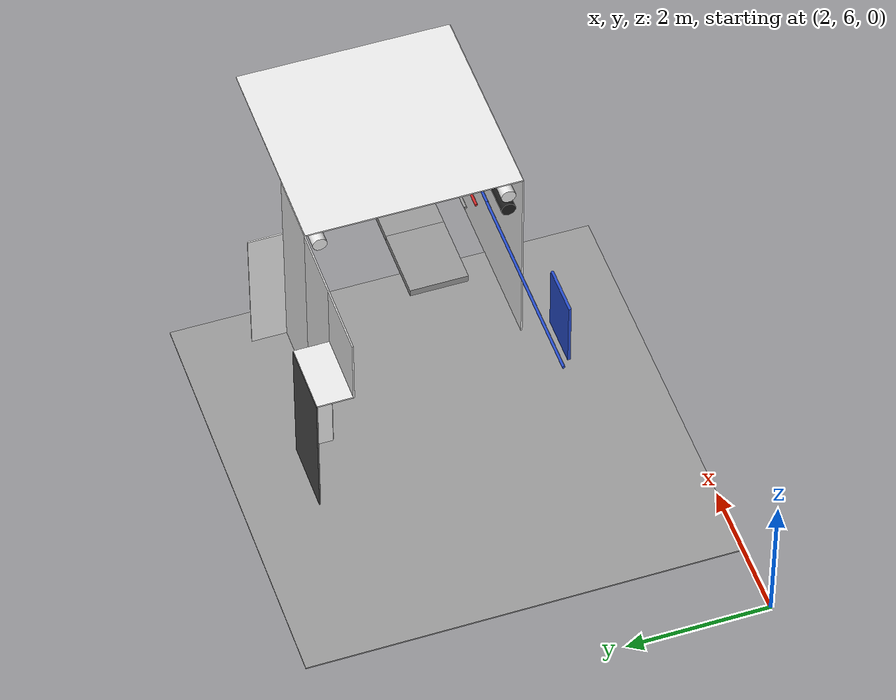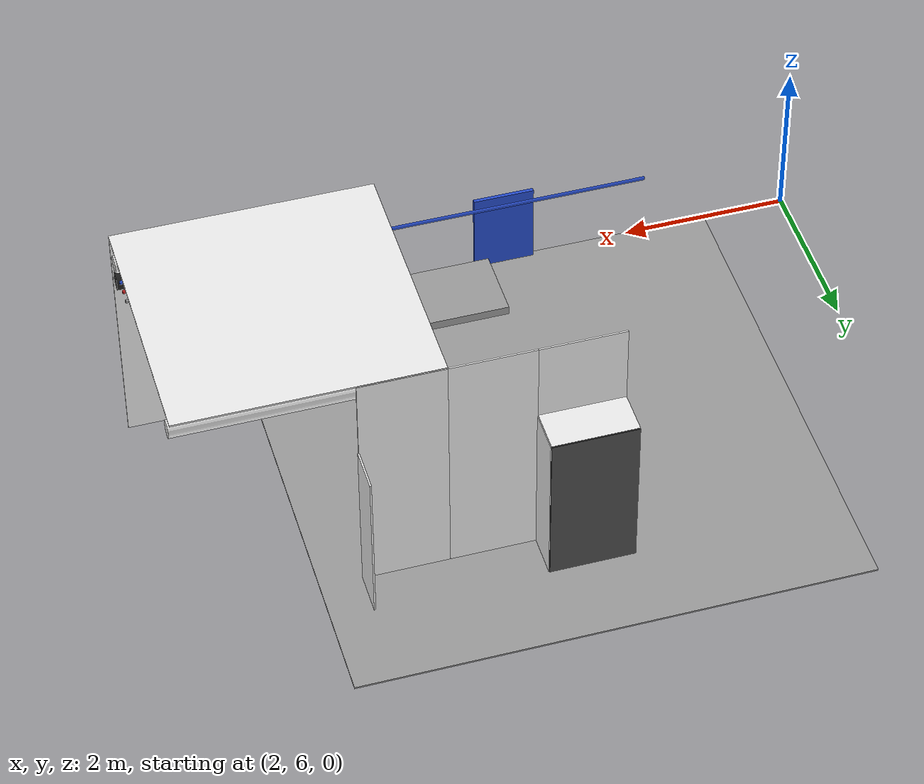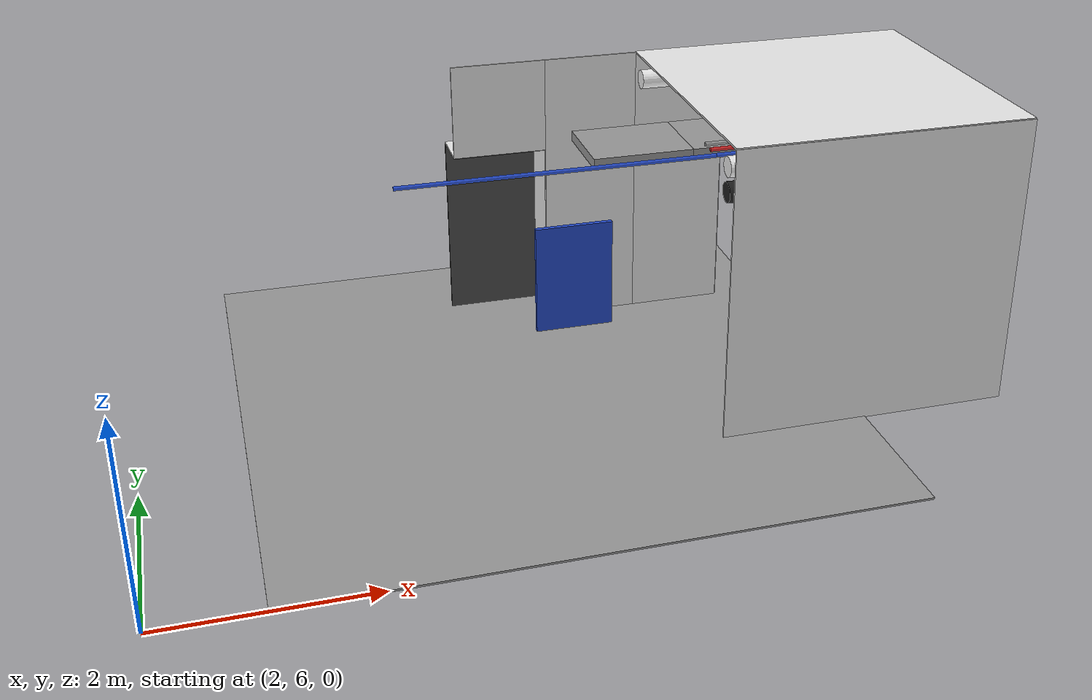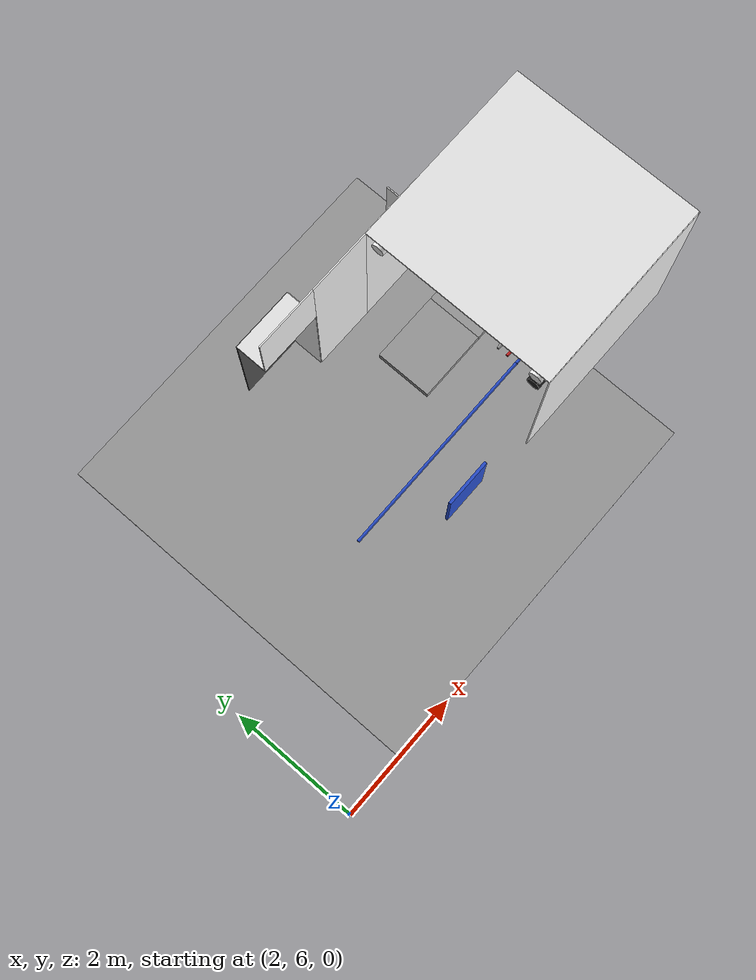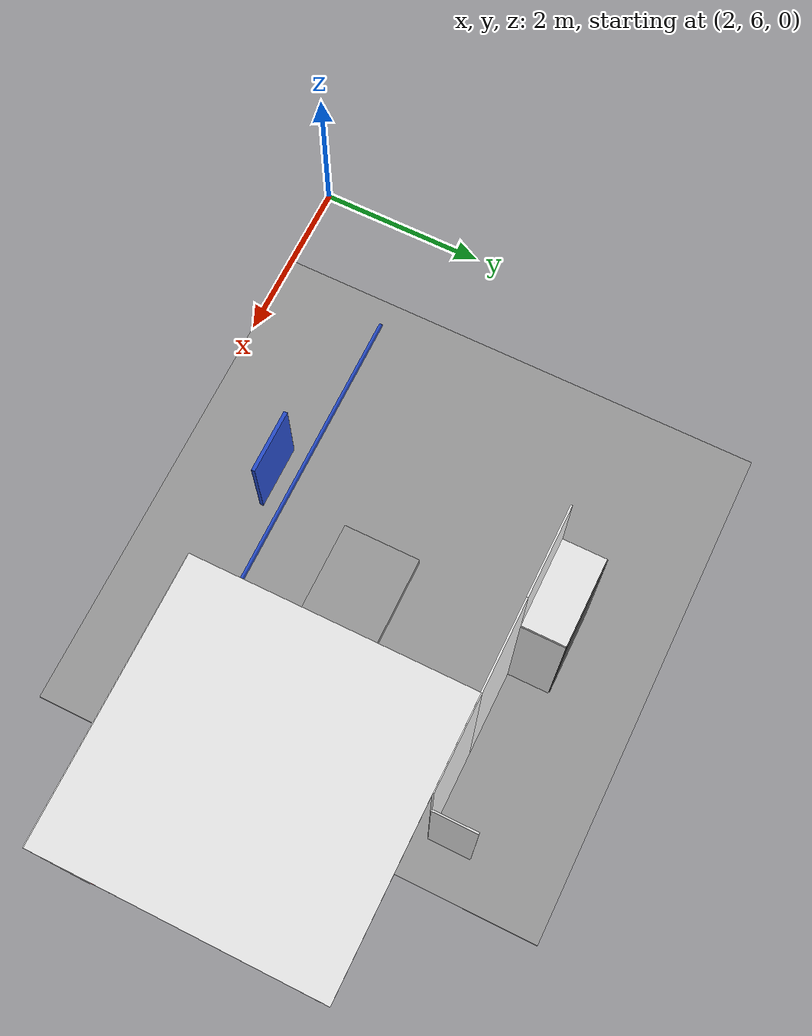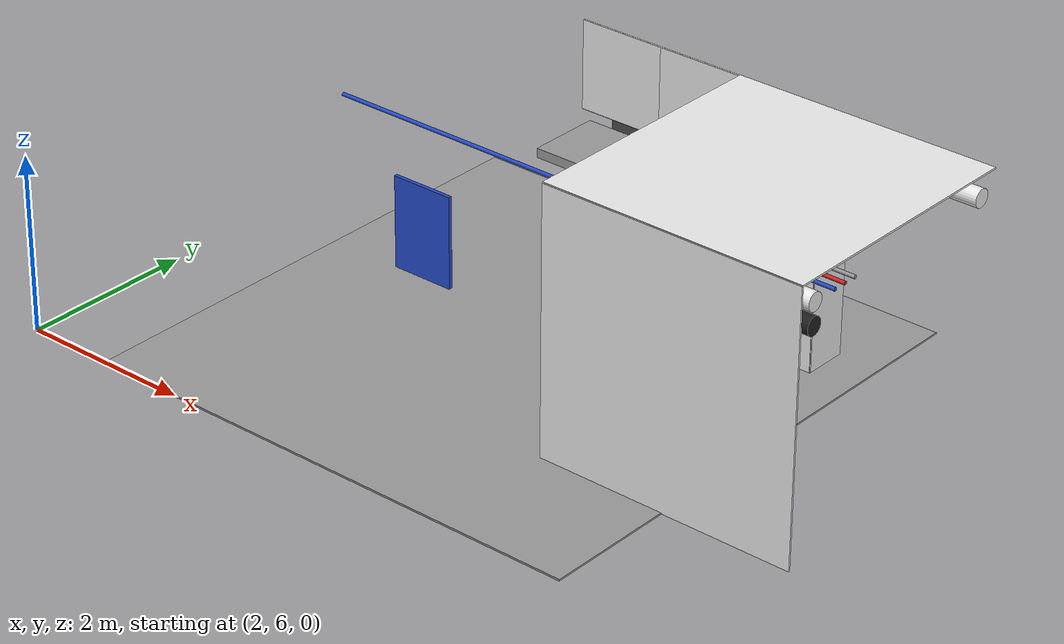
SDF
<sdf version="1.6">
 <world name="default">
  <model name="ceiling_1_2_3_2_1">
   <pose>7.0 9.0 2.55 0.0 0.0 -1.57</pose>
   <link name="link_1">
    <visual name="visual">
     <geometry><box><size>0.8 1 0.1</size></box></geometry>
     <material>
      <script><uri>file://media/materials/scripts/gazebo.material</uri><name>Gazebo/Grey</name></script>
     </material>
    </visual>
    <collision name="collision"><geometry><box><size>0.8 1 0.1</size></box></geometry></collision>
   </link>
   <static>1</static>
  </model>
  <model name="blue_pipe_right_2_3_0_1">
   <static>1</static>
   <pose>6.0 9.0 2.76 0.0 0.0 -1.57</pose>
   <link name="link_0">
    <visual name="visual">
     <pose>1 0 0 1.57 0 0</pose>
     <geometry><cylinder><radius>0.02</radius><length>3.0</length></cylinder></geometry>
     <material>
      <script><uri>file://media/materials/scripts/gazebo.material</uri><name>Gazebo/Blue</name></script>
     </material>
    </visual>
    <collision name="collision">
     <pose>1 0 0 1.57 0 0</pose>
     <geometry><cylinder><radius>0.02</radius><length>3.0</length></cylinder></geometry>
    </collision>
   </link>
  </model>
  <model name="panel_2_3_0_1">
   <static>1</static>
   <pose>6.0 7.5 1.95 0.0 0.0 -1.57</pose>
   <link name="link">
    <collision name="collision"><geometry><box><size>0.04 0.7 1</size></box></geometry></collision>
    <visual name="visual">
     <material>
      <script><name>Gazebo/Blue</name><uri>file://media/materials/scripts/gazebo.material</uri></script>
     </material>
     <geometry><box><size>0.04 0.7 1</size></box></geometry>
    </visual>
   </link>
  </model>
  <model name="wall_left_front_left_2_3_0_1">
   <static>1</static>
   <pose>7.0 10.5 1.5 0.0 0.0 0.0</pose>
   <link name="link">
    <collision name="collision"><geometry><box><size>1.0 0.02 3.0</size></box></geometry></collision>
    <visual name="visual">
     <material>
      <script><name>Gazebo/White</name><uri>file://media/materials/scripts/gazebo.material</uri></script>
     </material>
     <geometry><box><size>1.0 0.02 3.0</size></box></geometry>
    </visual>
   </link>
  </model>
  <model name="wall_left_front_up_2_3_0_1">
   <static>1</static>
   <pose>6.0 10.5 2.5 0.0 0.0 0.0</pose>
   <link name="link">
    <collision name="collision"><geometry><box><size>1.0 0.02 1.0</size></box></geometry></collision>
    <visual name="visual">
     <material>
      <script><name>Gazebo/White</name><uri>file://media/materials/scripts/gazebo.material</uri></script>
     </material>
     <geometry><box><size>1.0 0.02 1.0</size></box></geometry>
    </visual>
   </link>
  </model>
  <model name="wall_left_inside_back_2_3_0_1">
   <static>1</static>
   <pose>6.0 11.0 1.0 0.0 0.0 0.0</pose>
   <link name="link">
    <collision name="collision"><geometry><box><size>1 0.02 2</size></box></geometry></collision>
    <visual name="visual">
     <material>
      <script><name>Gazebo/DarkGrey</name><uri>file://media/materials/scripts/gazebo.material</uri></script>
     </material>
     <geometry><box><size>1 0.02 2</size></box></geometry>
    </visual>
   </link>
  </model>
  <model name="wall_left_inside_left_2_3_0_1">
   <static>1</static>
   <pose>6.5 10.75 1.0 0.0 0.0 -1.57</pose>
   <link name="link">
    <collision name="collision"><geometry><box><size>0.5 0.02 2</size></box></geometry></collision>
    <visual name="visual">
     <material>
      <script><name>Gazebo/White</name><uri>file://media/materials/scripts/gazebo.material</uri></script>
     </material>
     <geometry><box><size>0.5 0.02 2</size></box></geometry>
    </visual>
   </link>
  </model>
  <model name="wall_left_inside_top_2_3_0_1">
   <static>1</static>
   <pose>6.0 10.75 2.0 1.57 0.0 0.0</pose>
   <link name="link">
    <collision name="collision"><geometry><box><size>1 0.02 0.5</size></box></geometry></collision>
    <visual name="visual">
     <material>
      <script><name>Gazebo/White</name><uri>file://media/materials/scripts/gazebo.material</uri></script>
     </material>
     <geometry><box><size>1 0.02 0.5</size></box></geometry>
    </visual>
   </link>
  </model>
  <model name="wall_bottom_2_3_0_1">
   <static>1</static>
   <pose>6.0 9.0 0.0 0.0 0.0 -1.57</pose>
   <link name="link">
    <collision name="collision"><geometry><box><size>6.0 6.0 0.02</size></box></geometry></collision>
    <visual name="visual">
     <material>
      <script><name>Gazebo/Grey</name><uri>file://media/materials/scripts/gazebo.material</uri></script>
     </material>
     <geometry><box><size>6.0 6.0 0.02</size></box></geometry>
    </visual>
   </link>
  </model>
  <model name="wall_right_3_3_0_1">
   <static>1</static>
   <pose>9.0 7.5 1.5 0.0 0.0 0.0</pose>
   <link name="link">
    <collision name="collision"><geometry><box><size>3.0 0.02 3.0</size></box></geometry></collision>
    <visual name="visual">
     <material>
      <script><name>Gazebo/White</name><uri>file://media/materials/scripts/gazebo.material</uri></script>
     </material>
     <geometry><box><size>3.0 0.02 3.0</size></box></geometry>
    </visual>
   </link>
  </model>
  <model name="wall_top_3_3_0_1">
   <static>1</static>
   <pose>9.0 9.0 3.0 1.57 0.0 -1.57</pose>
   <link name="link">
    <collision name="collision"><geometry><box><size>3.0 0.02 3.0</size></box></geometry></collision>
    <visual name="visual">
     <material>
      <script><name>Gazebo/White</name><uri>file://media/materials/scripts/gazebo.material</uri></script>
     </material>
     <geometry><box><size>3.0 0.02 3.0</size></box></geometry>
    </visual>
   </link>
  </model>
  <model name="ceiling_1_3_3_0_1">
   <pose>9.0 9.0 2.55 0.0 0.0 -1.57</pose>
   <link name="link_1">
    <visual name="visual">
     <geometry><box><size>0.8 1 0.1</size></box></geometry>
     <material>
      <script><uri>file://media/materials/scripts/gazebo.material</uri><name>Gazebo/Grey</name></script>
     </material>
    </visual>
    <collision name="collision"><geometry><box><size>0.8 1 0.1</size></box></geometry></collision>
   </link>
   <static>1</static>
  </model>
  <model name="ceiling_1_3_3_1_1">
   <pose>8.0 9.0 2.55 0.0 0.0 -1.57</pose>
   <link name="link_1">
    <visual name="visual">
     <geometry><box><size>0.8 1 0.1</size></box></geometry>
     <material>
      <script><uri>file://media/materials/scripts/gazebo.material</uri><name>Gazebo/Grey</name></script>
     </material>
    </visual>
    <collision name="collision"><geometry><box><size>0.8 1 0.1</size></box></geometry></collision>
   </link>
   <static>1</static>
  </model>
  <model name="white_pipe_left_3_3_0_1">
   <static>1</static>
   <pose>9.0 9.0 2.76 0.0 0.0 -1.57</pose>
   <link name="link_0">
    <visual name="visual">
     <pose>-1.3 0 0 1.57 0 0</pose>
     <geometry><cylinder><radius>0.1</radius><length>3.0</length></cylinder></geometry>
     <material>
      <script><uri>file://media/materials/scripts/gazebo.material</uri><name>Gazebo/White</name></script>
     </material>
    </visual>
    <collision name="collision">
     <pose>-1.3 0 0 1.57 0 0</pose>
     <geometry><cylinder><radius>0.1</radius><length>3.0</length></cylinder></geometry>
    </collision>
   </link>
  </model>
  <model name="white_pipe_right_3_3_0_1">
   <static>1</static>
   <pose>9.0 9.0 2.76 0.0 0.0 -1.57</pose>
   <link name="link_0">
    <visual name="visual">
     <pose>1.3 0 0 1.57 0 0</pose>
     <geometry><cylinder><radius>0.1</radius><length>3.0</length></cylinder></geometry>
     <material>
      <script><uri>file://media/materials/scripts/gazebo.material</uri><name>Gazebo/White</name></script>
     </material>
    </visual>
    <collision name="collision">
     <pose>1.3 0 0 1.57 0 0</pose>
     <geometry><cylinder><radius>0.1</radius><length>3.0</length></cylinder></geometry>
    </collision>
   </link>
  </model>
  <model name="black_pipe_right_3_3_0_1">
   <static>1</static>
   <pose>9.0 9.0 2.76 0.0 0.0 -1.57</pose>
   <link name="link_0">
    <visual name="visual">
     <pose>1.3 0 -0.25 1.57 0 0</pose>
     <geometry><cylinder><radius>0.1</radius><length>3.0</length></cylinder></geometry>
     <material>
      <script><uri>file://media/materials/scripts/gazebo.material</uri><name>Gazebo/Black</name></script>
     </material>
    </visual>
    <collision name="collision">
     <pose>1.3 0 -0.25 1.57 0 0</pose>
     <geometry><cylinder><radius>0.1</radius><length>3.0</length></cylinder></geometry>
    </collision>
   </link>
  </model>
  <model name="grey_pipe_right_3_3_0_1">
   <static>1</static>
   <pose>9.0 9.0 2.76 0.0 0.0 -1.57</pose>
   <link name="link_0">
    <visual name="visual">
     <pose>0.7 0 0 1.57 0 0</pose>
     <geometry><cylinder><radius>0.02</radius><length>3.0</length></cylinder></geometry>
     <material>
      <script><uri>file://media/materials/scripts/gazebo.material</uri><name>Gazebo/Grey</name></script>
     </material>
    </visual>
    <collision name="collision">
     <pose>0.7 0 0 1.57 0 0</pose>
     <geometry><cylinder><radius>0.02</radius><length>3.0</length></cylinder></geometry>
    </collision>
   </link>
  </model>
  <model name="red_pipe_right_3_3_0_1">
   <static>1</static>
   <pose>9.0 9.0 2.76 0.0 0.0 -1.57</pose>
   <link name="link_0">
    <visual name="visual">
     <pose>0.85 0 0 1.57 0 0</pose>
     <geometry><cylinder><radius>0.02</radius><length>3.0</length></cylinder></geometry>
     <material>
      <script><uri>file://media/materials/scripts/gazebo.material</uri><name>Gazebo/Red</name></script>
     </material>
    </visual>
    <collision name="collision">
     <pose>0.85 0 0 1.57 0 0</pose>
     <geometry><cylinder><radius>0.02</radius><length>3.0</length></cylinder></geometry>
    </collision>
   </link>
  </model>
  <model name="blue_pipe_right_3_3_0_1">
   <static>1</static>
   <pose>9.0 9.0 2.76 0.0 0.0 -1.57</pose>
   <link name="link_0">
    <visual name="visual">
     <pose>1 0 0 1.57 0 0</pose>
     <geometry><cylinder><radius>0.02</radius><length>3.0</length></cylinder></geometry>
     <material>
      <script><uri>file://media/materials/scripts/gazebo.material</uri><name>Gazebo/Blue</name></script>
     </material>
    </visual>
    <collision name="collision">
     <pose>1 0 0 1.57 0 0</pose>
     <geometry><cylinder><radius>0.02</radius><length>3.0</length></cylinder></geometry>
    </collision>
   </link>
  </model>
  <model name="wall_left_front_right_3_3_0_1">
   <static>1</static>
   <pose>8.0 10.5 1.5 0.0 0.0 0.0</pose>
   <link name="link">
    <collision name="collision"><geometry><box><size>1.0 0.02 3.0</size></box></geometry></collision>
    <visual name="visual">
     <material>
      <script><name>Gazebo/White</name><uri>file://media/materials/scripts/gazebo.material</uri></script>
     </material>
     <geometry><box><size>1.0 0.02 3.0</size></box></geometry>
    </visual>
   </link>
  </model>
  <model name="wall_left_inside_right_3_3_0_1">
   <static>1</static>
   <pose>8.5 10.75 1.0 0.0 0.0 -1.57</pose>
   <link name="link">
    <collision name="collision"><geometry><box><size>0.5 0.02 2</size></box></geometry></collision>
    <visual name="visual">
     <material>
      <script><name>Gazebo/White</name><uri>file://media/materials/scripts/gazebo.material</uri></script>
     </material>
     <geometry><box><size>0.5 0.02 2</size></box></geometry>
    </visual>
   </link>
  </model>
 </world>
</sdf>
